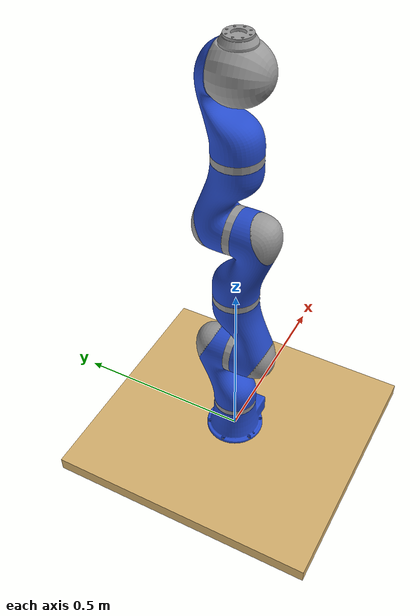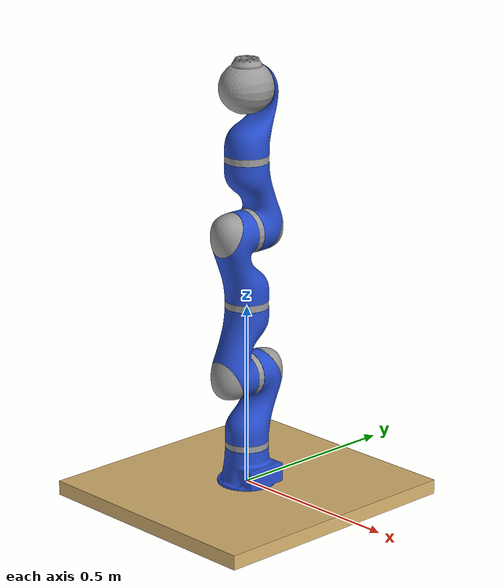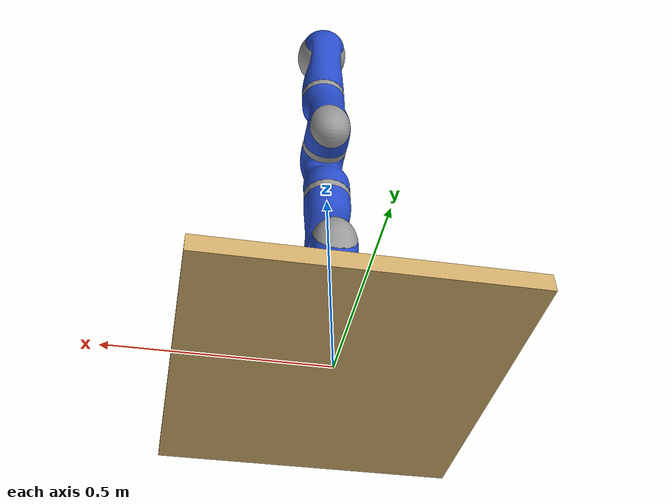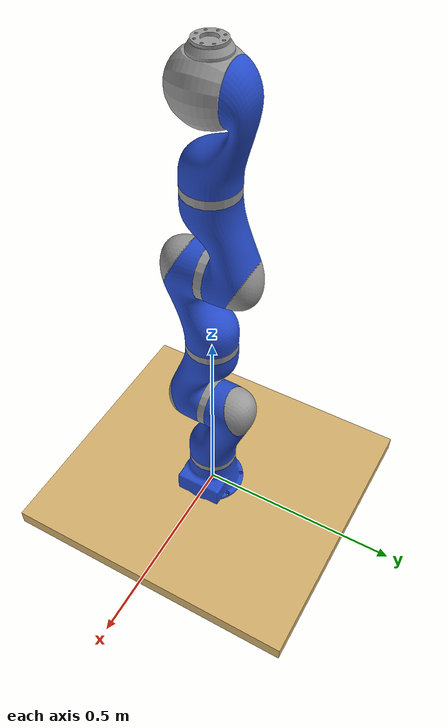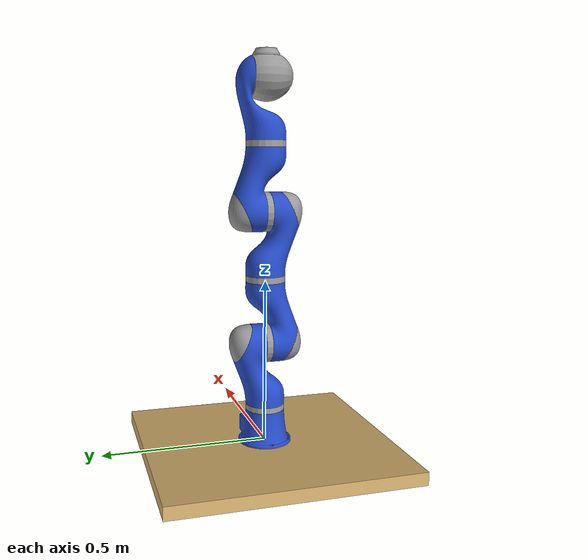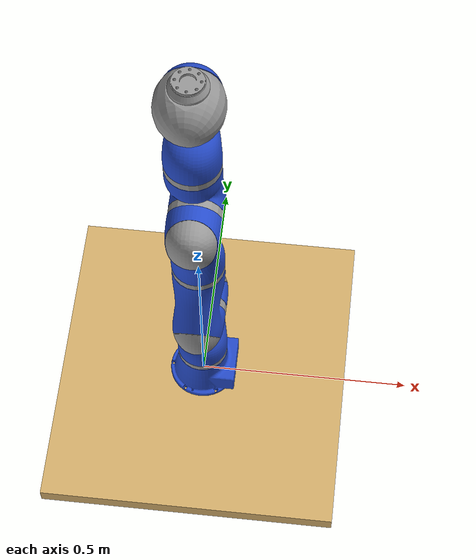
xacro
<?xml version="1.0"?>
<robot xmlns:xacro="http://www.ros.org/wiki/xacro" name="lwr">

  <xacro:arg name="use_gazebo" default="1"/>
  <xacro:arg name="use_transmission" default="1"/>
  <xacro:arg name="collision_simple" default="1"/>
  <xacro:arg name="visual_simple" default="0"/>

  <xacro:include filename="$(find kuka_lwr4_description)/urdf/defs/kuka_lwr_arm_defs.urdf.xacro"/>
  <xacro:if value="$(arg use_gazebo)">
    <xacro:include filename="$(find kuka_lwr4_description)/urdf/defs/gazebo_defs.gazebo"/>
  </xacro:if>
  <xacro:include filename="$(find kuka_lwr4_description)/urdf/defs/materials.xml"/>

  <link name="table">
    <visual>
      <origin xyz="0 0 -0.02" rpy="0 0 0"/>
      <geometry>
        <box size="0.7 0.75 0.04"/>
      </geometry>
      <material name="table_brown">
        <!-- wooden brown table -->
        <color rgba="0.839215686 0.694117647 0.42745098 1.0"/>
      </material>
    </visual>
    <collision>
      <origin xyz="0 0 -0.02" rpy="0 0 0"/>
      <geometry>
        <box size="0.7 0.75 0.04"/>
      </geometry>
    </collision>
  </link>

  <xacro:if value="$(arg use_gazebo)">
  <gazebo reference="table">
    <!-- Gazebo wood texture -->
    <material>Gazebo/Wood</material>
  </gazebo>
  </xacro:if>

  <kuka_lwr_arm parent="table" name="lwr" right="1" gazebo="$(arg use_gazebo)" transmission="$(arg use_transmission)" collisionsimple="$(arg collision_simple)" visualsimple="$(arg visual_simple)">
    <origin xyz="0 0 0" rpy="0 0 0"/>
  </kuka_lwr_arm>

</robot>

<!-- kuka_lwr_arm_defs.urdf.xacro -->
<robot xmlns:sensor="http://playerstage.sourceforge.net/gazebo/xmlschema/#sensor"
       xmlns:controller="http://playerstage.sourceforge.net/gazebo/xmlschema/#controller"
       xmlns:interface="http://playerstage.sourceforge.net/gazebo/xmlschema/#interface"
       xmlns:xacro="http://www.ros.org/wiki/xacro">

  <xacro:include filename="$(find kuka_lwr4_description)/urdf/defs/util_defs.xacro"/>

  <xacro:property name="arm_elem_base_mass" value="2.0"/>
  <xacro:property name="arm_elem_link_mass" value="2.0"/>
  <xacro:property name="arm_elem_end_link_mass" value="2.0"/>
  <xacro:property name="arm_elem_ball_link_mass" value="2.0"/>

  <xacro:property name="arm_velocity_scale_factor" value="1"/>

  <xacro:macro name="kuka_lwr_arm" params="parent name right gazebo transmission collisionsimple visualsimple *origin">

    <joint name="${parent}_${name}_arm_base_joint" type="fixed">
      <xacro:insert_block name="origin"/>
      <parent link="${parent}"/>
      <child link="base"/>
    </joint>

    <link name="base">
      <inertial>
        <mass value="${arm_elem_base_mass}"/>
        <origin xyz="0 0 0.055"/>
        <cylinder_inertia_def radius="0.06" length="0.11"
                              mass="${arm_elem_base_mass}"/>
      </inertial>

      <xacro:unless value="${visualsimple}">
      <visual>
        <origin xyz="0 0 0" rpy="0 0 ${M_PI}"/>
        <geometry>
          <mesh filename="package://kuka_lwr4_description/meshes/kuka_colour/base.dae"/>
        </geometry>
        <material name="Blue"/>
      </visual>
      </xacro:unless>
      <xacro:if value="${visualsimple}">
      <visual>
        <origin rpy="0 0 0" xyz="0.04 0 0.03"/>
        <geometry>
          <box size="0.08 0.12 0.06"/>
        </geometry>
        <material name="Blue"/>
      </visual>
      <visual>
        <origin rpy="0 0 0" xyz="0 0 0.05"/>
        <geometry>
          <cylinder length="0.1" radius="0.06"/>
        </geometry>
        <material name="Blue"/>
      </visual>
      </xacro:if>

      <xacro:unless value="${collisionsimple}">
      <collision>
        <origin xyz="0 0 0.055" rpy="0 0 ${M_PI}"/>
        <geometry>
          <mesh filename="package://kuka_lwr4_description/meshes/lwr/convex/arm_base_convex.stl"/>
        </geometry>
      </collision>
      </xacro:unless>
      <xacro:if value="${collisionsimple}">
      <collision>
        <origin rpy="0 0 0" xyz="0.04 0 0.03"/>
        <geometry>
          <box size="0.08 0.12 0.06"/>
        </geometry>
      </collision>
      <collision>
        <origin rpy="0 0 0" xyz="0 0 0.05"/>
        <geometry>
          <cylinder length="0.1" radius="0.06"/>
        </geometry>
      </collision>
      </xacro:if>
    </link>

    <xacro:if value="${gazebo}">
    <gazebo reference="calib_${name}_arm_base_link">
      <turnGravityOff>true</turnGravityOff>
    </gazebo>
    </xacro:if>

    <joint name="${name}_arm_0_joint" type="revolute">
      <origin xyz="0 0 0.11" rpy="0 0 ${M_PI}"/>
      <axis xyz="0 0 1"/>
      <limit lower="${-170 * M_PI / 180}" upper="${170 * M_PI / 180}"
             effort="176" velocity="${arm_velocity_scale_factor * 110 * M_PI / 180}" />
      <safety_controller soft_lower_limit="${-168 * M_PI / 180}"
                         soft_upper_limit="${168 * M_PI / 180}"
                         k_position="30"
                         k_velocity="30"/>
      <dynamics damping="1.0"/>
      <parent link="base"/>
      <child link="${name}_arm_1_link"/>
    </joint>

    <link name="${name}_arm_1_link">
      <inertial>
        <mass value="${arm_elem_link_mass}"/>
        <origin rpy="0 0 0" xyz="0 -0.06 0.130"/>
        <cuboid_inertia_def length="0.12" width="0.06" height="0.260"
                            mass="${arm_elem_link_mass}"/>
      </inertial>

      <xacro:unless value="${visualsimple}">
      <visual>
        <origin rpy="0 0 ${1.5*M_PI}" xyz="0 0 0.2"/>
        <geometry>
          <mesh filename="package://kuka_lwr4_description/meshes/kuka_colour/link1.dae"/>
        </geometry>
        <material name="Blue"/>
      </visual>
      <visual>
        <origin rpy="0 0 ${1.5*M_PI}" xyz="0 0 0.2"/>
        <geometry>
          <mesh filename="package://kuka_lwr4_description/meshes/kuka_colour/link1_m.dae"/>
        </geometry>
        <material name="Grey"/>
      </visual>
      <visual>
        <origin rpy="0 0 0" xyz="0 0 0"/>
        <geometry>
          <mesh filename="package://kuka_lwr4_description/meshes/kuka_colour/kuka_ring.dae"/>
        </geometry>
        <material name="Grey"/>
      </visual>
      </xacro:unless>
      <xacro:if value="${visualsimple}">
      <visual>
        <origin rpy="0 0 0" xyz="0 0 0.05"/>
        <geometry>
          <cylinder length="0.1" radius="0.06"/>
        </geometry>
        <material name="Blue"/>
      </visual>
      <visual>
        <origin rpy="0 0 0" xyz="0 -0.04 0.12"/>
        <geometry>
          <cylinder length="0.05" radius="0.03"/>
        </geometry>
        <material name="Blue"/>
      </visual>
      <visual>
        <origin rpy="0 0 0" xyz="0 -0.04 0.2"/>
        <geometry>
          <sphere radius="0.06"/>
        </geometry>
        <material name="Blue"/>
      </visual>
      </xacro:if>

      <xacro:unless value="${collisionsimple}">
      <collision>
        <origin xyz="0 0 0" rpy="0 0 0"/>
        <geometry>
          <mesh filename="package://kuka_lwr4_description/meshes/lwr/convex/arm_segment_a_convex.stl"/>
        </geometry>
      </collision>
      </xacro:unless>
      <xacro:if value="${collisionsimple}">
      <collision>
        <origin rpy="0 0 0" xyz="0 0 0.05"/>
        <geometry>
          <cylinder length="0.1" radius="0.06"/>
        </geometry>
      </collision>
      <collision>
        <origin rpy="0 0 0" xyz="0 -0.04 0.2"/>
        <geometry>
          <sphere radius="0.06"/>
      </geometry>
      </collision>
      </xacro:if>
    </link>

    <xacro:if value="${gazebo}">
    <gazebo reference="${name}_arm_1_link">
      <gravity>0</gravity>
    </gazebo>
    </xacro:if>

    <xacro:if value="${transmission}">
    <transmission name="${name}_arm_0_trans" type="SimpleTransmission">
      <actuator name="${name}_arm_0_motor"/>
      <joint name="${name}_arm_0_joint"/>
      <mechanicalReduction>1.0</mechanicalReduction>
    </transmission>
    </xacro:if>

    <!-- Third segment of the arm. Joint along y-axis -->
    <joint name="${name}_arm_1_joint" type="revolute">
      <origin xyz="0 0 0.2" rpy="0 0 0"/>
      <axis xyz="0 1 0"/>
      <limit lower="${-120 * M_PI / 180}" upper="${120 * M_PI / 180}"
             effort="176" velocity="${arm_velocity_scale_factor * 110 * M_PI / 180}" />
      <safety_controller soft_lower_limit="${-118 * M_PI / 180}"
                         soft_upper_limit="${118 * M_PI / 180}"
                         k_position="30"
                         k_velocity="30"/>
      <dynamics damping="1.0" friction="10"/>
      <parent link="${name}_arm_1_link"/>
      <child link="${name}_arm_2_link"/>
    </joint>

    <link name="${name}_arm_2_link">
      <inertial>
        <mass value="${arm_elem_link_mass}"/>
        <origin rpy="0 0 0" xyz="0 0.06 ${0.130 - 0.06}"/>
        <cuboid_inertia_def length="0.12" width="0.06" height="0.260"
                            mass="${arm_elem_link_mass}"/>
      </inertial>

      <xacro:unless value="${visualsimple}">
      <visual>
        <origin rpy="0 0 ${1.5*M_PI}" xyz="0 0 0"/>
        <geometry>
          <mesh filename="package://kuka_lwr4_description/meshes/kuka_colour/link2.dae"/>
        </geometry>
        <material name="Blue"/>
      </visual>
      <visual>
        <origin rpy="0 0 ${1.5*M_PI}" xyz="0 0 0"/>
        <geometry>
          <mesh filename="package://kuka_lwr4_description/meshes/kuka_colour/link2_m.dae"/>
        </geometry>
        <material name="Grey"/>
      </visual>
      <visual>
        <origin rpy="${0.5*M_PI} 0 0" xyz="0 0 0"/>
        <geometry>
          <mesh filename="package://kuka_lwr4_description/meshes/kuka_colour/kuka_ring.dae"/>
        </geometry>
        <material name="Grey"/>
      </visual>
      </xacro:unless>
      <xacro:if value="${visualsimple}">
      <visual>
        <origin rpy="0 0 0" xyz="0 0 0.15"/>
        <geometry>
          <cylinder length="0.1" radius="0.06"/>
        </geometry>
        <material name="Blue"/>
      </visual>
      <visual>
        <origin rpy="0 0 0" xyz="0 0.04 0.08"/>
        <geometry>
          <cylinder length="0.05" radius="0.03"/>
        </geometry>
        <material name="Blue"/>
      </visual>
      <visual>
        <origin rpy="0 0 0" xyz="0 0.04 0"/>
        <geometry>
          <sphere radius="0.06"/>
        </geometry>
      <material name="Blue"/>
      </visual>
      </xacro:if>

      <xacro:unless value="${collisionsimple}">
      <collision>
        <origin xyz="0 0 0.2" rpy="${M_PI} 0 0"/>
        <geometry>
          <mesh filename="package://kuka_lwr4_description/meshes/lwr/convex/arm_segment_b_convex.stl"/>
        </geometry>
      </collision>
      </xacro:unless>
      <xacro:if value="${collisionsimple}">
      <collision>
        <origin rpy="0 0 0" xyz="0 0 0.15"/>
        <geometry>
          <cylinder length="0.1" radius="0.06"/>
        </geometry>
      </collision>
      <collision>
        <origin rpy="0 0 0" xyz="0 0.04 0"/>
        <geometry>
        <sphere radius="0.06"/>
      </geometry>
      </collision>
      </xacro:if>
    </link>

    <xacro:if value="${gazebo}">
    <gazebo reference="${name}_arm_2_link">
      <gravity>0</gravity>
    </gazebo>
    </xacro:if>

    <xacro:if value="${transmission}">
    <transmission name="${name}_arm_1_trans" type="SimpleTransmission">
      <actuator name="${name}_arm_1_motor"/>
      <joint name="${name}_arm_1_joint"/>
      <mechanicalReduction>1.0</mechanicalReduction>
    </transmission>
    </xacro:if>

    <joint name="${name}_arm_2_joint" type="revolute">
      <origin xyz="0 0 0.20" rpy="0 0 0"/>
      <axis xyz="0 0 1"/>
      <limit lower="${-170 * M_PI / 180}" upper="${170 * M_PI / 180}"
             effort="100" velocity="${arm_velocity_scale_factor * 130 * M_PI / 180}" />
      <safety_controller soft_lower_limit="${-168 * M_PI / 180}"
                         soft_upper_limit="${168 * M_PI / 180}"
                         k_position="30"
                         k_velocity="30"/>
      <dynamics damping="1.0"/>
      <parent link="${name}_arm_2_link"/>
      <child link="${name}_arm_3_link"/>
    </joint>

    <link name="${name}_arm_3_link">
      <inertial>
        <mass value="${arm_elem_link_mass}"/>
        <origin rpy="0 0 0" xyz="0 0.06 0.130"/>
        <cuboid_inertia_def length="0.12" width="0.06" height="0.260"
                            mass="${arm_elem_link_mass}"/>
      </inertial>

      <xacro:unless value="${visualsimple}">
      <visual>
        <origin rpy="0 0 ${1.5*M_PI}" xyz="0 0 0.2"/>
        <geometry>
          <mesh filename="package://kuka_lwr4_description/meshes/kuka_colour/link3.dae"/>
        </geometry>
        <material name="Blue"/>
      </visual>
      <visual>
        <origin rpy="0 0 ${1.5*M_PI}" xyz="0 0 0.2"/>
        <geometry>
          <mesh filename="package://kuka_lwr4_description/meshes/kuka_colour/link3_m.dae"/>
        </geometry>
        <material name="Grey"/>
      </visual>
      <visual>
        <origin rpy="0 0 0" xyz="0 0 0"/>
        <geometry>
          <mesh filename="package://kuka_lwr4_description/meshes/kuka_colour/kuka_ring.dae"/>
        </geometry>
        <material name="Grey"/>
      </visual>
      </xacro:unless>
      <xacro:if value="${visualsimple}">
      <visual>
        <origin rpy="0 0 0" xyz="0 0 0.05"/>
        <geometry>
          <cylinder length="0.1" radius="0.06"/>
        </geometry>
        <material name="Blue"/>
      </visual>
      <visual>
        <origin rpy="0 0 0" xyz="0 0.04 0.12"/>
        <geometry>
          <cylinder length="0.05" radius="0.03"/>
        </geometry>
        <material name="Blue"/>
      </visual>
      <visual>
        <origin rpy="0 0 0" xyz="0 0.04 0.2"/>
        <geometry>
          <sphere radius="0.06"/>
        </geometry>
        <material name="Blue"/>
      </visual>
      </xacro:if>

      <xacro:unless value="${collisionsimple}">
      <collision>
        <origin xyz="0 0 0" rpy="0 0 ${M_PI}"/>
        <geometry>
          <mesh filename="package://kuka_lwr4_description/meshes/lwr/convex/arm_segment_a_convex.stl"/>
        </geometry>
      </collision>
      </xacro:unless>
      <xacro:if value="${collisionsimple}">
      <collision>
        <origin rpy="0 0 0" xyz="0 0 0.05"/>
        <geometry>
          <cylinder length="0.1" radius="0.06"/>
        </geometry>
      </collision>
      <collision>
        <origin rpy="0 0 0" xyz="0 0.04 0.2"/>
        <geometry>
          <sphere radius="0.06"/>
        </geometry>
      </collision>
      </xacro:if>
    </link>

    <xacro:if value="${gazebo}">
    <gazebo reference="${name}_arm_3_link">
      <turnGravityOff>true</turnGravityOff>
    </gazebo>
    </xacro:if>

    <xacro:if value="${transmission}">
    <transmission name="${name}_arm_2_trans" type="SimpleTransmission">
      <actuator name="${name}_arm_2_motor"/>
      <joint name="${name}_arm_2_joint"/>
      <mechanicalReduction>1.0</mechanicalReduction>
    </transmission>
    </xacro:if>

    <!-- fifth element of the arm. x-axis -->
    <joint name="${name}_arm_3_joint" type="revolute">
      <origin xyz="0 0 0.20" rpy="0 0 0"/>
      <axis xyz="0 -1 0"/>
      <limit lower="${-120 * M_PI / 180}" upper="${120 * M_PI / 180}"
             effort="100" velocity="${arm_velocity_scale_factor * 130 * M_PI / 180}" />
      <safety_controller soft_lower_limit="${-118 * M_PI / 180}"
                         soft_upper_limit="${118 * M_PI / 180}"
                         k_position="30"
                         k_velocity="30"/>
      <dynamics damping="1.0"/>
      <parent link="${name}_arm_3_link"/>
      <child link="${name}_arm_4_link"/>
    </joint>

    <link name="${name}_arm_4_link">
      <inertial>
        <mass value="${arm_elem_link_mass}"/>
        <origin rpy="0 0 0" xyz="0 -0.06 ${0.130 - 0.06}"/>
        <cuboid_inertia_def length="0.12" width="0.06" height="0.2600"
                            mass="${arm_elem_link_mass}"/>
      </inertial>

      <xacro:unless value="${visualsimple}">
      <visual>
        <origin rpy="0 0 ${1.5*M_PI}" xyz="0 0 0"/>
        <geometry>
          <mesh filename="package://kuka_lwr4_description/meshes/kuka_colour/link4.dae"/>
        </geometry>
        <material name="Blue"/>
      </visual>
      <visual>
        <origin rpy="0 0 ${1.5*M_PI}" xyz="0 0 0"/>
        <geometry>
          <mesh filename="package://kuka_lwr4_description/meshes/kuka_colour/link4_m.dae"/>
        </geometry>
        <material name="Grey"/>
      </visual>
      <visual>
        <origin rpy="${0.5*M_PI} 0 0" xyz="0 0 0"/>
        <geometry>
          <mesh filename="package://kuka_lwr4_description/meshes/kuka_colour/kuka_ring.dae"/>
        </geometry>
        <material name="Grey"/>
      </visual>
      </xacro:unless>
      <xacro:if value="${visualsimple}">
      <visual>
        <origin rpy="0 0 0" xyz="0 0 0.15"/>
        <geometry>
          <cylinder length="0.1" radius="0.06"/>
        </geometry>
        <material name="Blue"/>
      </visual>
      <visual>
        <origin rpy="0 0 0" xyz="0 -0.04 0.08"/>
        <geometry>
          <cylinder length="0.05" radius="0.03"/>
        </geometry>
        <material name="Blue"/>
      </visual>
      <visual>
        <origin rpy="0 0 0" xyz="0 -0.04 0"/>
        <geometry>
          <sphere radius="0.06"/>
        </geometry>
        <material name="Blue"/>
      </visual>
      </xacro:if>

      <xacro:unless value="${collisionsimple}">
      <collision>
        <origin xyz="0 0 0.2" rpy="0 ${M_PI} 0"/>
        <geometry>
          <mesh filename="package://kuka_lwr4_description/meshes/lwr/convex/arm_segment_b_convex.stl"/>
        </geometry>
      </collision>
      </xacro:unless>
      <xacro:if value="${collisionsimple}">
      <collision>
        <origin rpy="0 0 0" xyz="0 0 0.15"/>
        <geometry>
          <cylinder length="0.1" radius="0.06"/>
        </geometry>
      </collision>
      <collision>
        <origin rpy="0 0 0" xyz="0 -0.04 0"/>
        <geometry>
          <sphere radius="0.06"/>
        </geometry>
      </collision>
      </xacro:if>
    </link>

    <xacro:if value="${gazebo}">
    <gazebo reference="${name}_arm_4_link">
      <turnGravityOff>true</turnGravityOff>
    </gazebo>
    </xacro:if>

    <xacro:if value="${transmission}">
    <transmission name="${name}_arm_3_trans" type="SimpleTransmission">
      <actuator name="${name}_arm_3_motor"/>
      <joint name="${name}_arm_3_joint"/>
      <mechanicalReduction>1.0</mechanicalReduction>
    </transmission>
    </xacro:if>

    <joint name="${name}_arm_4_joint" type="revolute">
      <origin xyz="0 0 0.20" rpy="0 0 0"/>
      <axis xyz="0 0 1"/>
      <limit lower="${-170 * M_PI / 180}" upper="${170 * M_PI / 180}"
             effort="100" velocity="${arm_velocity_scale_factor * 130 * M_PI / 180}" />
      <safety_controller soft_lower_limit="${-168 * M_PI / 180}"
                         soft_upper_limit="${168 * M_PI / 180}"
                         k_position="30"
                         k_velocity="30"/>
      <dynamics damping="1.0"/>
      <parent link="${name}_arm_4_link"/>
      <child link="${name}_arm_5_link"/>
    </joint>

    <link name="${name}_arm_5_link">
      <inertial>
        <mass value="${arm_elem_link_mass}"/>
        <origin rpy="0 0 0" xyz="0 0 0.124"/>
        <cuboid_inertia_def length="0.12" width="0.06" height="0.248"
                            mass="${arm_elem_link_mass}"/>
      </inertial>

      <xacro:unless value="${visualsimple}">
      <visual>
        <origin rpy="0 0 ${1.5*M_PI}" xyz="0 0 0.19"/>
        <geometry name="${name}_arm_5_geom">
          <mesh filename="package://kuka_lwr4_description/meshes/kuka_colour/link5.dae"/>
        </geometry>
        <material name="Blue"/>
      </visual>
      <visual>
        <origin rpy="0 0 0" xyz="0 0 0"/>
        <geometry>
          <mesh filename="package://kuka_lwr4_description/meshes/kuka_colour/kuka_ring.dae"/>
        </geometry>
        <material name="Grey"/>
      </visual>
      </xacro:unless>
      <xacro:if value="${visualsimple}">
      <visual>
        <origin rpy="0 0 0" xyz="0 0 0.05"/>
        <geometry>
          <cylinder length="0.1" radius="0.06"/>
        </geometry>
        <material name="Blue"/>
      </visual>
      <visual>
        <origin rpy="0 0 0" xyz="0 -0.04 0.12"/>
        <geometry>
          <cylinder length="0.05" radius="0.03"/>
        </geometry>
        <material name="Blue"/>
      </visual>
      <visual>
        <origin rpy="0 0 0" xyz="0 -0.04 0.2"/>
        <geometry>
          <sphere radius="0.06"/>
        </geometry>
        <material name="Blue"/>
      </visual>
      </xacro:if>

      <xacro:unless value="${collisionsimple}">
      <collision>
        <origin xyz="0 0 0" rpy="0 0 0"/>
        <geometry>
          <mesh filename="package://kuka_lwr4_description/meshes/lwr/convex/arm_segment_last_convex.stl"/>
        </geometry>
      </collision>
      </xacro:unless>
      <xacro:if value="${collisionsimple}">
      <collision>
        <origin rpy="0 0 0" xyz="0 0 0.05"/>
        <geometry>
          <cylinder length="0.1" radius="0.06"/>
        </geometry>
      </collision>
      <collision>
        <origin rpy="0 0 0" xyz="0 -0.04 0.2"/>
        <geometry>
          <sphere radius="0.06"/>
        </geometry>
      </collision>
      </xacro:if>
    </link>

    <xacro:if value="${gazebo}">
    <gazebo reference="${name}_arm_5_link">
      <turnGravityOff>true</turnGravityOff>
    </gazebo>
    </xacro:if>

    <xacro:if value="${transmission}">
    <transmission name="${name}_arm_4_trans" type="SimpleTransmission">
      <actuator name="${name}_arm_4_motor"/>
      <joint name="${name}_arm_4_joint"/>
      <mechanicalReduction>1.0</mechanicalReduction>
    </transmission>
    </xacro:if>

    <joint name="${name}_arm_5_joint" type="revolute">
      <origin xyz="0 0 0.19" rpy="0 0 0"/>
      <axis xyz="0 1 0"/>
      <limit lower="${-120 * M_PI / 180}" upper="${120 * M_PI / 180}"
             effort="38" velocity="${arm_velocity_scale_factor * 180 * M_PI / 180}" />
      <safety_controller soft_lower_limit="${-118 * M_PI / 180}"
                         soft_upper_limit="${118 * M_PI / 180}"
                         k_position="30"
                         k_velocity="30"/>
      <dynamics damping="1.0"/>
      <parent link="${name}_arm_5_link"/>
      <child link="${name}_arm_6_link"/>
    </joint>

    <link name="${name}_arm_6_link">
      <inertial>
        <mass value="0.2"/>
        <origin rpy="0 0 0" xyz="0 0 0.0625"/>
        <cuboid_inertia_def length="0.125" width="0.125" height="0.125"
                            mass="0.2"/>
      </inertial>

      <xacro:unless value="${visualsimple}">
      <visual>
        <origin rpy="0 0 ${M_PI}" xyz="0 0 0"/>
        <geometry>
          <mesh filename="package://kuka_lwr4_description/meshes/kuka_colour/kuka_wrist.dae"/>
        </geometry>
        <material name="Grey"/>
      </visual>
      </xacro:unless>
      <xacro:if value="${visualsimple}">
      <visual>
        <origin rpy="0 0 0" xyz="0 0.01 0"/>
        <geometry>
          <sphere radius="0.07"/>
        </geometry>
        <material name="Grey"/>
      </visual>
      <visual>
        <origin rpy="0 0 0" xyz="0 -0.01 0"/>
        <geometry>
          <sphere radius="0.07"/>
        </geometry>
      </visual>
      </xacro:if>

      <xacro:unless value="${collisionsimple}">
      <collision>
        <origin xyz="0 0 0" rpy="0 0 0"/>
        <geometry>
          <mesh filename="package://kuka_lwr4_description/meshes/lwr/convex/arm_wrist_convex.stl"/>
        </geometry>
      </collision>
      </xacro:unless>
      <xacro:if value="${collisionsimple}">
      <collision>
        <origin rpy="0 0 0" xyz="0 0.01 0"/>
        <geometry>
          <sphere radius="0.07"/>
        </geometry>
        <material name="Grey"/>
      </collision>
      <collision>
        <origin rpy="0 0 0" xyz="0 -0.01 0"/>
        <geometry>
          <sphere radius="0.07"/>
        </geometry>
      </collision>
      </xacro:if>
    </link>

    <xacro:if value="${gazebo}">
    <gazebo reference="${name}_arm_6_link">
      <turnGravityOff>true</turnGravityOff>
    </gazebo>
    </xacro:if>

    <xacro:if value="${transmission}">
    <transmission name="${name}_arm_5_trans" type="SimpleTransmission">
      <actuator name="${name}_arm_5_motor"/>
      <joint name="${name}_arm_5_joint"/>
      <mechanicalReduction>1.0</mechanicalReduction>
    </transmission>
    </xacro:if>

    <joint name="${name}_arm_6_joint" type="revolute">
      <origin xyz="0 0 0.078" rpy="0 0 ${M_PI}"/>
      <axis xyz="0 0 1"/>
      <limit lower="${-170 * M_PI / 180}" upper="${170 * M_PI / 180}"
             effort="38" velocity="${arm_velocity_scale_factor * 180 * M_PI / 180}" />
      <safety_controller soft_lower_limit="${-168 * M_PI / 180}"
                         soft_upper_limit="${168 * M_PI / 180}"
                         k_position="30"
                         k_velocity="30"/>
      <dynamics damping="1.0"/>
      <parent link="${name}_arm_6_link"/>
      <child link="${name}_arm_7_link"/>
    </joint>

    <link name="${name}_arm_7_link">
      <inertial>
        <mass value="0.2"/>
        <origin xyz="0 0 0"/>
        <cuboid_inertia_def length="1" width="1" height="1"
                            mass="0.2"/>
      </inertial>

      <xacro:unless value="${visualsimple}">
      <visual>
        <origin xyz="0 0 0" rpy="0 0 0"/>
        <geometry>
          <mesh filename="package://kuka_lwr4_description/meshes/kuka_colour/link7.dae"/>
        </geometry>
        <material name="Grey"/>
      </visual>
      </xacro:unless>
      <xacro:if value="${visualsimple}">
      <visual>
        <origin rpy="0 0 -0.785398163397" xyz="0 0 0"/>
        <geometry>
          <cylinder length="0.05" radius="0.04"/>
        </geometry>
        <material name="Grey"/>
      </visual>
      </xacro:if>

      <xacro:unless value="${collisionsimple}">
      <collision>
        <origin xyz="0 0 0" rpy="0 0 ${right * -1/4 * M_PI}"/>
        <geometry>
          <cylinder radius="0.04" length="0.05"/>
        </geometry>
      </collision>
      </xacro:unless>
      <xacro:if value="${collisionsimple}">
      <collision>
        <origin rpy="0 0 -0.785398163397" xyz="0 0 0"/>
        <geometry>
          <cylinder length="0.05" radius="0.04"/>
        </geometry>
      </collision>
      </xacro:if>
    </link>

    <xacro:if value="${gazebo}">
    <gazebo reference="${name}_arm_7_link">
      <turnGravityOff>true</turnGravityOff>
    </gazebo>
    </xacro:if>

    <xacro:if value="${transmission}">
    <transmission name="${name}_arm_6_trans" type="SimpleTransmission">
      <actuator name="${name}_arm_6_motor"/>
      <joint name="${name}_arm_6_joint"/>
      <mechanicalReduction>1.0</mechanicalReduction>
    </transmission>
    </xacro:if>

  </xacro:macro>

</robot>
